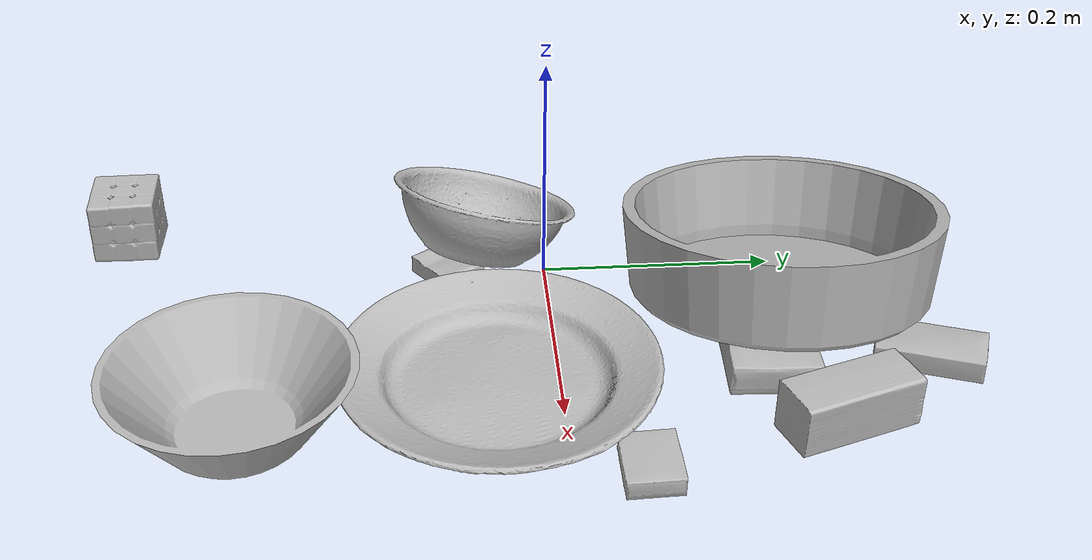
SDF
<sdf version="1.4">
  <world name="default">
    <light name="light1" type="point">
      <pose>0 0 1 0 0 0</pose>
      <diffuse>3 3 3 1</diffuse>
      <specular>3 3 3 1</specular>
    </light>
    <light name="light2" type="point">
      <pose>0 0.5 2 0 0 0</pose>
      <diffuse>1 1 1 1</diffuse>
      <specular>1 1 1 1</specular>
    </light>
    <light name="light3" type="point">
      <pose>0 0.5 2 0 0 0</pose>
      <diffuse>3 3 3 1</diffuse>
      <specular>3 3 3 1</specular>
    </light>
    <scene>
      <ambient>0.7 0.7 0.7</ambient>
    </scene>
    <model name="box1">
      <link name="link_box1">
        <collision name="default">
          <geometry>
            <mesh>
              <uri>model://cracker_box/collision_meshes/collision.obj</uri>
              <scale>0.25 0.25 0.25</scale>
            </mesh>
          </geometry>
          <surface>
            <friction>
              <ode>
                <mu>0.5</mu>
                <mu2>0.5</mu2>
              </ode>
            </friction>
          <contact>
        <ode>
            <max_vel>0</max_vel>
            <min_depth>0.0001</min_depth>
            <kp>1e8</kp>
        </ode>
    </contact></surface>
        </collision>
        <visual name="default">
          <geometry>
            <mesh>
              <uri>model://cracker_box/visual_meshes/visual.dae</uri>
              <scale>0.25 0.25 0.25</scale>
            </mesh>
          </geometry>
        </visual>
        <inertial>
          <mass>0.050503700971603394</mass>
          <pose>0.0002366037224419415 6.358561950037256e-05 -0.0004257383698131889 -0.00031620760376762643 -0.011106489600284392 0.0025467959332018085</pose>
          <inertia>
            <ixx>8.02868e-06</ixx>
            <iyy>1.3256925e-05</iyy>
            <izz>1.8918852e-05</izz>
            <ixy>0</ixy>
            <ixz>0</ixz>
            <iyz>0</iyz>
          </inertia>
        </inertial>
      </link>
      <pose>0.0037025955971330404 -0.08491811156272888 0.009123689495027065 -0.012050848178643957 -0.007406609707012533 0.6228151281766059</pose>
    </model>
    <model name="box11">
      <link name="link_box11">
        <collision name="default">
          <geometry>
            <mesh>
              <uri>model://rubiks_cube/collision_meshes/collision.obj</uri>
              <scale>1.0 1.0 1.0</scale>
            </mesh>
          </geometry>
          <surface>
            <friction>
              <ode>
                <mu>0.5</mu>
                <mu2>0.5</mu2>
              </ode>
            </friction>
          <contact>
        <ode>
            <max_vel>0</max_vel>
            <min_depth>0.0001</min_depth>
            <kp>1e8</kp>
        </ode>
    </contact></surface>
        </collision>
        <visual name="default">
          <geometry>
            <mesh>
              <uri>model://rubiks_cube/visual_meshes/visual.dae</uri>
              <scale>1.0 1.0 1.0</scale>
            </mesh>
          </geometry>
        </visual>
        <inertial>
          <mass>0.15071694552898407</mass>
          <pose>2.6721043468569405e-05 5.2569666877388954e-05 -7.264316082000732e-06 -0.05467297119259296 -0.09814009057422186 -0.034453654418704155</pose>
          <inertia>
            <ixx>8.328124e-05</ixx>
            <iyy>8.2892846e-05</iyy>
            <izz>8.397135e-05</izz>
            <ixy>0</ixy>
            <ixz>0</ixz>
            <iyz>0</iyz>
          </inertia>
        </inertial>
      </link>
      <pose>-0.06766515970230103 -0.37060514092445374 0.02867896296083927 -4.4295606241560305e-06 -5.828374281530373e-07 1.5920599540125955</pose>
    </model>
    <model name="box2">
      <link name="link_box2">
        <collision name="default">
          <geometry>
            <mesh>
              <uri>model://gelatin_box/collision_meshes/collision.obj</uri>
              <scale>1.0 1.0 1.0</scale>
            </mesh>
          </geometry>
          <surface>
            <friction>
              <ode>
                <mu>0.5</mu>
                <mu2>0.5</mu2>
              </ode>
            </friction>
          <contact>
        <ode>
            <max_vel>0</max_vel>
            <min_depth>0.0001</min_depth>
            <kp>1e8</kp>
        </ode>
    </contact></surface>
        </collision>
        <visual name="default">
          <geometry>
            <mesh>
              <uri>model://gelatin_box/visual_meshes/visual.dae</uri>
              <scale>1.0 1.0 1.0</scale>
            </mesh>
          </geometry>
        </visual>
        <inertial>
          <mass>0.24173277616500854</mass>
          <pose>0.00043196187471039593 0.00011156872642459348 -0.0003640321083366871 -0.001050371835386973 -0.004755817297158009 0.016440553881960234</pose>
          <inertia>
            <ixx>0.00017064363</ixx>
            <iyy>0.00012188985</iyy>
            <izz>0.00025975762</izz>
            <ixy>0</ixy>
            <ixz>0</ixz>
            <iyz>0</iyz>
          </inertia>
        </inertial>
      </link>
      <pose>0.14578713476657867 0.16960179805755615 0.015168651938438416 0.005611010885764665 -0.007319283758775361 -1.6225993394361788</pose>
    </model>
    <model name="box21">
      <link name="link_box21">
        <collision name="default">
          <geometry>
            <mesh>
              <uri>model://wood_block/collision_meshes/collision.obj</uri>
              <scale>0.5 0.5 0.5</scale>
            </mesh>
          </geometry>
          <surface>
            <friction>
              <ode>
                <mu>0.5</mu>
                <mu2>0.5</mu2>
              </ode>
            </friction>
          <contact>
        <ode>
            <max_vel>0</max_vel>
            <min_depth>0.0001</min_depth>
            <kp>1e8</kp>
        </ode>
    </contact></surface>
        </collision>
        <visual name="default">
          <geometry>
            <mesh>
              <uri>model://wood_block/visual_meshes/visual.dae</uri>
              <scale>0.5 0.5 0.5</scale>
            </mesh>
          </geometry>
        </visual>
        <inertial>
          <mass>0.16252566874027252</mass>
          <pose>-2.906657982748584e-06 -0.000285404734313488 0.00013204291462898254 -0.05220975528683206 -0.005192696037335319 -0.006861378846526553</pose>
          <inertia>
            <ixx>5.437098e-05</ixx>
            <iyy>0.00017175796</iyy>
            <izz>0.00017111548</izz>
            <ixy>0</ixy>
            <ixz>0</ixz>
            <iyz>0</iyz>
          </inertia>
        </inertial>
      </link>
      <pose>0.22745288908481598 0.2140110284090042 0.022629261016845703 -0.005208393295426904 0.005718776625353928 1.903452577103693</pose>
    </model>
    <model name="box3">
      <link name="link_box3">
        <collision name="default">
          <geometry>
            <mesh>
              <uri>model://pudding_box/collision_meshes/collision.obj</uri>
              <scale>0.5 0.5 0.5</scale>
            </mesh>
          </geometry>
          <surface>
            <friction>
              <ode>
                <mu>0.5</mu>
                <mu2>0.5</mu2>
              </ode>
            </friction>
          <contact>
        <ode>
            <max_vel>0</max_vel>
            <min_depth>0.0001</min_depth>
            <kp>1e8</kp>
        </ode>
    </contact></surface>
        </collision>
        <visual name="default">
          <geometry>
            <mesh>
              <uri>model://pudding_box/visual_meshes/visual.dae</uri>
              <scale>0.5 0.5 0.5</scale>
            </mesh>
          </geometry>
        </visual>
        <inertial>
          <mass>0.05576644837856293</mass>
          <pose>0.00024474109522998333 0.0004033942532259971 -0.0002594413817860186 0.005213101792545572 -0.006603798718575614 0.020079825159656634</pose>
          <inertia>
            <ixx>1.5760277e-05</ixx>
            <iyy>1.0603625e-05</iyy>
            <izz>2.3274164e-05</izz>
            <ixy>0</ixy>
            <ixz>0</ixz>
            <iyz>0</iyz>
          </inertia>
        </inertial>
      </link>
      <pose>0.2720516622066498 0.05597109720110893 0.009862905368208885 0.0223497347461468 -0.011390844412199227 1.579564854247044</pose>
    </model>
    <model name="box31">
      <link name="link_box31">
        <collision name="default">
          <geometry>
            <mesh>
              <uri>model://sugar_box/collision_meshes/collision.obj</uri>
              <scale>0.5 0.5 0.5</scale>
            </mesh>
          </geometry>
          <surface>
            <friction>
              <ode>
                <mu>0.5</mu>
                <mu2>0.5</mu2>
              </ode>
            </friction>
          <contact>
        <ode>
            <max_vel>0</max_vel>
            <min_depth>0.0001</min_depth>
            <kp>1e8</kp>
        </ode>
    </contact></surface>
        </collision>
        <visual name="default">
          <geometry>
            <mesh>
              <uri>model://sugar_box/visual_meshes/visual.dae</uri>
              <scale>0.5 0.5 0.5</scale>
            </mesh>
          </geometry>
        </visual>
        <inertial>
          <mass>0.1100529357790947</mass>
          <pose>0.0005171863595023751 1.924554817378521e-05 -0.00018182402709499002 -0.00040462641680988955 0.001050663522315131 0.0026153787888612426</pose>
          <inertia>
            <ixx>2.2923945e-05</ixx>
            <iyy>7.409492e-05</iyy>
            <izz>8.870046e-05</izz>
            <ixy>0</ixy>
            <ixz>0</ixz>
            <iyz>0</iyz>
          </inertia>
        </inertial>
      </link>
      <pose>0.1521812081336975 0.3011387586593628 0.011399302631616592 0.0007751486938173508 -0.023433210717460188 1.1858444055335007</pose>
    </model>
    <model name="plate1">
      <link name="link_plate1">
        <collision name="default">
          <geometry>
            <mesh>
              <uri>model://pan_tefal/collision_meshes/collision.obj</uri>
              <scale>1.0 1.0 1.0</scale>
            </mesh>
          </geometry>
          <surface>
            <friction>
              <ode>
                <mu>0.5</mu>
                <mu2>0.5</mu2>
              </ode>
            </friction>
          <contact>
        <ode>
            <max_vel>0</max_vel>
            <min_depth>0.0001</min_depth>
            <kp>1e8</kp>
        </ode>
    </contact></surface>
        </collision>
        <visual name="default">
          <geometry>
            <mesh>
              <uri>model://pan_tefal/visual_meshes/visual.dae</uri>
              <scale>1.0 1.0 1.0</scale>
            </mesh>
          </geometry>
        </visual>
        <inertial>
          <mass>1.207520604133606</mass>
          <pose>-0.00018002177239395678 3.2792409911053255e-05 -0.00851493701338768 0.0008190288495961148 -0.0003301407263612178 -0.3318541272495768</pose>
          <inertia>
            <ixx>0.008335457</ixx>
            <iyy>0.008389196</iyy>
            <izz>0.015343971</izz>
            <ixy>0</ixy>
            <ixz>0</ixz>
            <iyz>0</iyz>
          </inertia>
        </inertial>
      </link>
      <pose>0.07019725441932678 0.19173084199428558 0.06010821461677551 -0.16971003279562363 0.10983783134679113 2.1102346707769177</pose>
    </model>
    <model name="bowl1">
      <link name="link_bowl1">
        <collision name="default">
          <geometry>
            <mesh>
              <uri>model://bowl/collision_meshes/collision.obj</uri>
              <scale>1.0 1.0 1.0</scale>
            </mesh>
          </geometry>
          <surface>
            <friction>
              <ode>
                <mu>0.5</mu>
                <mu2>0.5</mu2>
              </ode>
            </friction>
          <contact>
        <ode>
            <max_vel>0</max_vel>
            <min_depth>0.0001</min_depth>
            <kp>1e8</kp>
        </ode>
    </contact></surface>
        </collision>
        <visual name="default">
          <geometry>
            <mesh>
              <uri>model://bowl/visual_meshes/visual.dae</uri>
              <scale>1.0 1.0 1.0</scale>
            </mesh>
          </geometry>
        </visual>
        <inertial>
          <mass>0.09256309270858765</mass>
          <pose>0.00020445158588699996 -0.001030202372930944 -0.0008042642730288208 -0.015764073075752352 0.01454679669645375 0.7140412125775129</pose>
          <inertia>
            <ixx>0.00021262471</ixx>
            <iyy>0.00020787389</iyy>
            <izz>0.00035770793</izz>
            <ixy>0</ixy>
            <ixz>0</ixz>
            <iyz>0</iyz>
          </inertia>
        </inertial>
      </link>
      <pose>-0.0178372859954834 -0.05554573982954025 0.041929692029953 -0.2338991899710895 -0.286658356108169 0.054225213783912075</pose>
    </model>
    <model name="plate2">
      <link name="link_plate2">
        <collision name="default">
          <geometry>
            <mesh>
              <uri>model://plate/collision_meshes/collision.obj</uri>
              <scale>1.0 1.0 1.0</scale>
            </mesh>
          </geometry>
          <surface>
            <friction>
              <ode>
                <mu>0.5</mu>
                <mu2>0.5</mu2>
              </ode>
            </friction>
          <contact>
        <ode>
            <max_vel>0</max_vel>
            <min_depth>0.0001</min_depth>
            <kp>1e8</kp>
        </ode>
    </contact></surface>
        </collision>
        <visual name="default">
          <geometry>
            <mesh>
              <uri>model://plate/visual_meshes/visual.dae</uri>
              <scale>1.0 1.0 1.0</scale>
            </mesh>
          </geometry>
        </visual>
        <inertial>
          <mass>0.22150008380413055</mass>
          <pose>-0.0006044640904292464 0.0002782581141218543 -0.0010561984963715076 0.0022187839711676756 -0.00322547471274247 0.4526095389577293</pose>
          <inertia>
            <ixx>0.0010361817</ixx>
            <iyy>0.0010262709</iyy>
            <izz>0.0020266173</izz>
            <ixy>0</ixy>
            <ixz>0</ixz>
            <iyz>0</iyz>
          </inertia>
        </inertial>
      </link>
      <pose>0.1602824479341507 -0.049400292336940765 0.013732998631894588 4.497791655788685e-08 -6.342383694181713e-08 -0.8556461509355751</pose>
    </model>
    <model name="bowl2">
      <link name="link_bowl2">
        <collision name="default">
          <geometry>
            <mesh>
              <uri>model://bowl_a/collision_meshes/collision.obj</uri>
              <scale>1.0 1.0 1.0</scale>
            </mesh>
          </geometry>
          <surface>
            <friction>
              <ode>
                <mu>0.5</mu>
                <mu2>0.5</mu2>
              </ode>
            </friction>
          <contact>
        <ode>
            <max_vel>0</max_vel>
            <min_depth>0.0001</min_depth>
            <kp>1e8</kp>
        </ode>
    </contact></surface>
        </collision>
        <visual name="default">
          <geometry>
            <mesh>
              <uri>model://bowl_a/visual_meshes/visual.dae</uri>
              <scale>1.0 1.0 1.0</scale>
            </mesh>
          </geometry>
        </visual>
        <inertial>
          <mass>0.4869906008243561</mass>
          <pose>0.0002786735713016242 4.731232547783293e-05 -0.001376529224216938 -0.0009805388639875933 -0.0010938169956893674 -0.19123322132810686</pose>
          <inertia>
            <ixx>0.0013864844</ixx>
            <iyy>0.0013949967</iyy>
            <izz>0.0024659163</izz>
            <ixy>0</ixy>
            <ixz>0</ixz>
            <iyz>0</iyz>
          </inertia>
        </inertial>
      </link>
      <pose>0.2014564424753189 -0.2528049647808075 0.030382992699742317 -1.2667047314251417e-08 1.1412432089034181e-08 0.6486075698863129</pose>
    </model>
  <physics type="ode">
      <max_contacts>50</max_contacts>
      <ode>
        <solver>
          <type>quick</type>
          <iters>75</iters>
        </solver>
        <constraints>
          <contact_max_correcting_vel>0</contact_max_correcting_vel>
          <contact_surface_layer>0</contact_surface_layer>
        </constraints>
      </ode>
    </physics></world>
</sdf>
